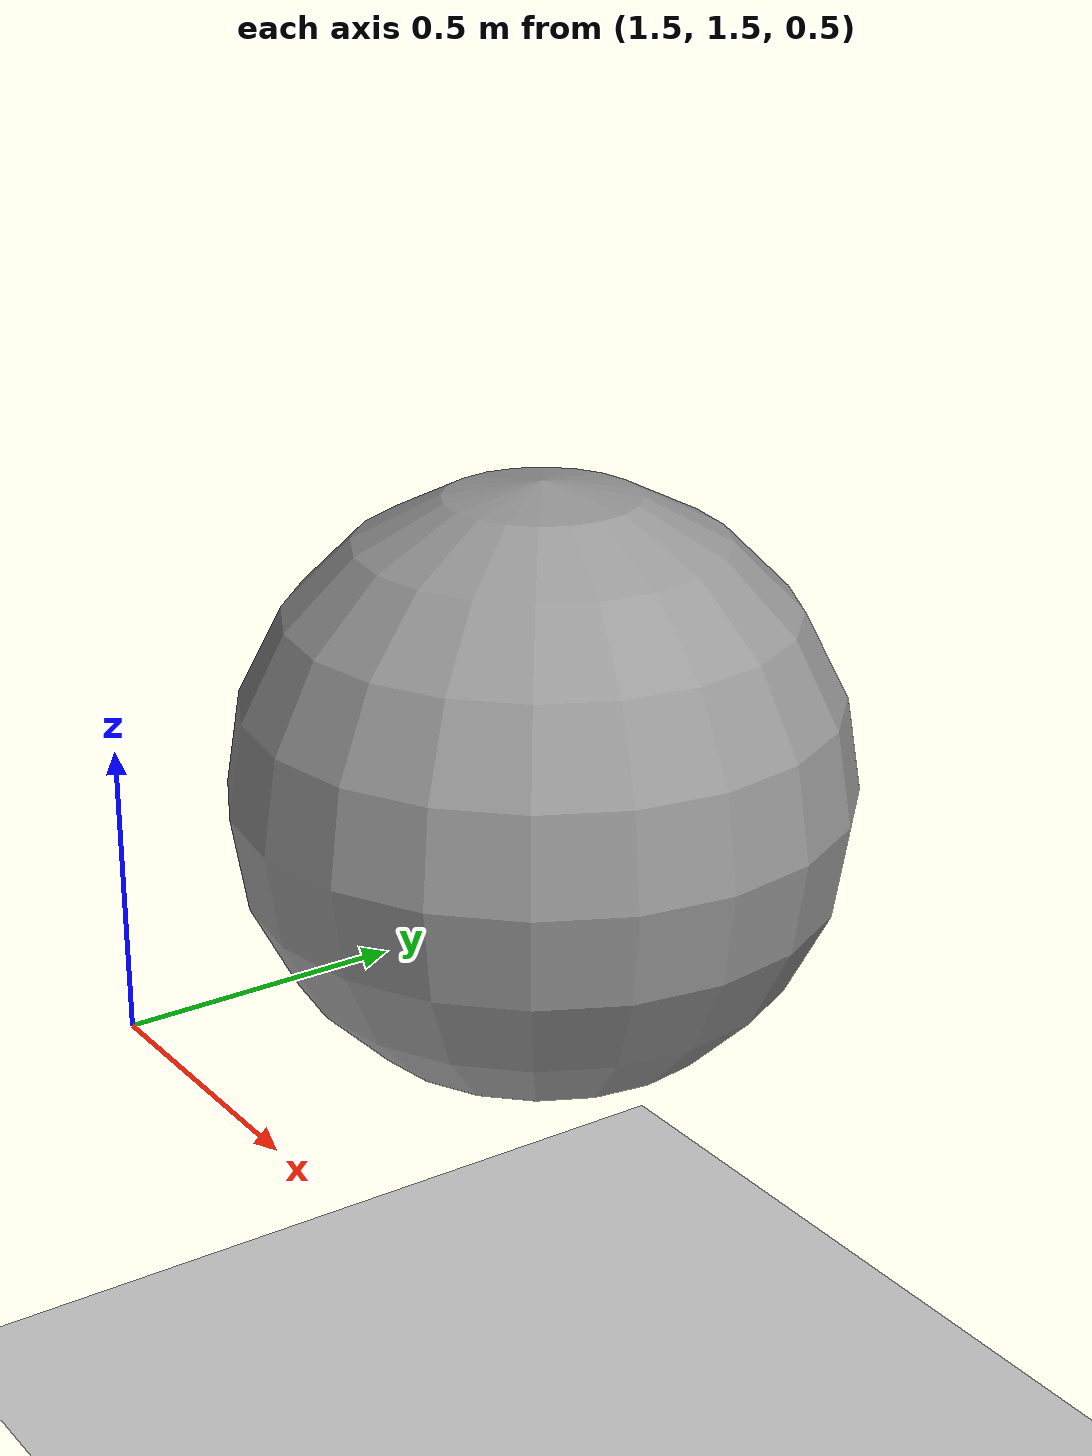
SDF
<?xml version="1.0" ?>
<sdf version="1.5">
  <world name="blast_test">
    <!-- A global light source -->
    <include>
      <uri>model://sun</uri>
    </include>
    <!-- A ground plane -->
    <include>
      <uri>model://ground_plane</uri>
      <pose>0 0 -0.2 0 0 0</pose>
    </include>
    <include>
      <uri>model://asphalt_plane</uri>
      <pose>0 0 -0.2 0 0 0</pose>
    </include>
    <plugin name='blast3d_plugin' filename='libgazebo_blast3d_world_plugin.so'>
      <publishRate>2.0</publishRate>
      <blast3dServerRegisterLinkTopic>/gazebo/default/blast3d_register_link</blast3dServerRegisterLinkTopic>
    </plugin>
    <gravity>0 0 -9.8066</gravity>
    <physics name='default_physics' default='0' type='ode'>
      <ode>
        <solver>
          <type>quick</type>
          <iters>10</iters>
          <sor>1.3</sor>
          <use_dynamic_moi_rescaling>0</use_dynamic_moi_rescaling>
        </solver>
        <constraints>
          <cfm>0</cfm>
          <erp>0.2</erp>
          <contact_max_correcting_vel>100</contact_max_correcting_vel>
          <contact_surface_layer>0.001</contact_surface_layer>
        </constraints>
      </ode>
      <max_step_size>0.001</max_step_size>
      <real_time_factor>1</real_time_factor>
      <real_time_update_rate>1000</real_time_update_rate>
      <magnetic_field>6.0e-6 2.3e-5 -4.2e-5</magnetic_field>
    </physics>
    <model name='unit_sphere'>
      <pose>2.0 2.0 1.0 0 -0 0</pose>
      <link name='base_link2'>
        <inertial>
          <mass>0.1</mass>
          <inertia>
            <ixx>0.01</ixx>
            <ixy>0</ixy>
            <ixz>0</ixz>
            <iyy>0.01</iyy>
            <iyz>0</iyz>
            <izz>0.01</izz>
          </inertia>
          <pose>0 0 0 0 -0 0</pose>
        </inertial>
        <collision name='collision'>
          <geometry>
            <sphere>
              <radius>0.5</radius>
            </sphere>
          </geometry>
          <max_contacts>10</max_contacts>
          <surface>
            <contact>
              <ode/>
            </contact>
            <bounce/>
            <friction>
              <torsional>
                <ode/>
              </torsional>
              <ode/>
            </friction>
          </surface>
        </collision>
        <visual name='visual'>
          <geometry>
            <sphere>
              <radius>0.5</radius>
            </sphere>
          </geometry>
          <material>
            <script>
              <name>Gazebo/Grey</name>
              <uri>file://media/materials/scripts/gazebo.material</uri>
            </script>
          </material>
        </visual>
        <self_collide>0</self_collide>
        <enable_gravity>1</enable_gravity>
        <kinematic>0</kinematic>
        <plugin name='gazebo_blast3d_plugin' filename='libgazebo_blast3d_model_plugin.so'>
          <robotNamespace></robotNamespace>
          <frameId>world</frameId>
          <linkName>/sphere/base_link2</linkName>
          <blast3dServerRegisterLinkTopic>/gazebo/default/blast3d_register_link</blast3dServerRegisterLinkTopic>
          <blast3dServerLinkTopic>/gazebo/default/sphere_blast3d</blast3dServerLinkTopic>
        </plugin>
      </link>
      <static>false</static>
    </model>
    <plugin name="gymfc_plugin" filename="libFlightControllerPlugin.so">
      <connectionTimeoutMaxCount>5</connectionTimeoutMaxCount>
      <loopRate>1000.0</loopRate>
      <robotNamespace>gymfc</robotNamespace>
    </plugin>
  </world>
</sdf>
